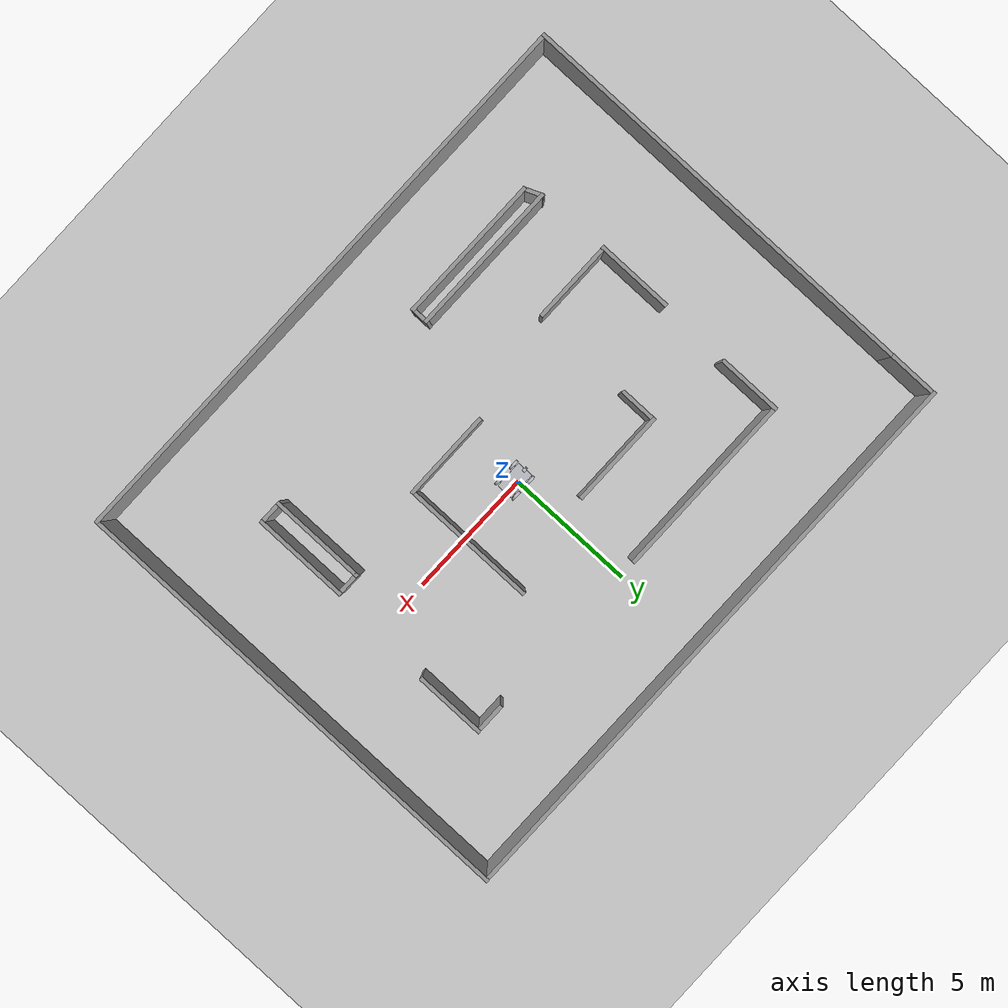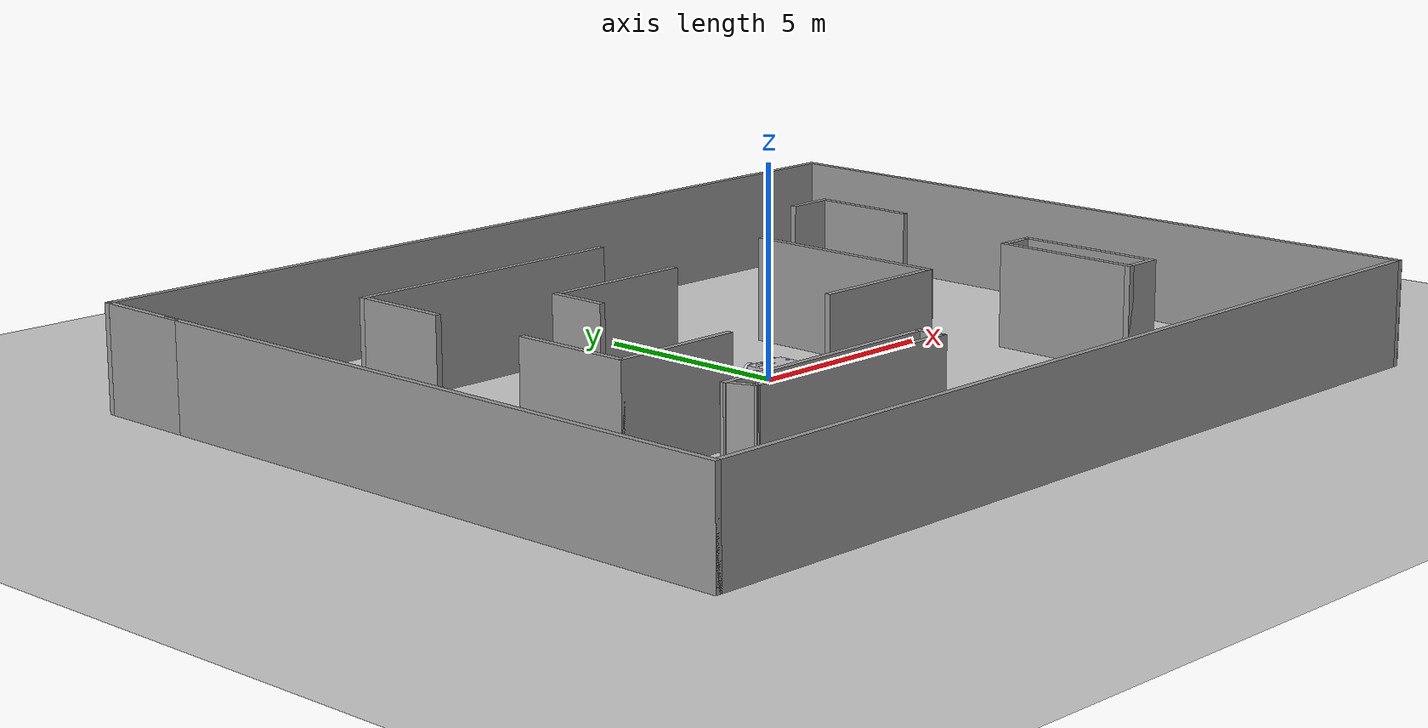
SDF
<sdf version="1.7">
 <world name="default">
  <light name="sun" type="directional">
   <pose>0 0 10 0 -0 0</pose>
   <diffuse>0.8 0.8 0.8 1</diffuse>
   <specular>0.2 0.2 0.2 1</specular>
   <attenuation>
    <range>1000</range>
    <constant>0.9</constant>
    <linear>0.01</linear>
    <quadratic>0.001</quadratic>
   </attenuation>
   <direction>-0.5 0.1 -0.9</direction>
   <spot><inner_angle>0</inner_angle><outer_angle>0</outer_angle><falloff>0</falloff></spot>
  </light>
  <model name="ground_plane">
   <static>1</static>
   <link name="link">
    <collision name="collision">
     <geometry><plane><normal>0 0 1</normal><size>100 100</size></plane></geometry>
     <surface><friction><ode><mu>100</mu><mu2>50</mu2></ode></friction></surface>
    </collision>
    <visual name="visual">
     <cast_shadows>0</cast_shadows>
     <geometry><plane><normal>0 0 1</normal><size>100 100</size></plane></geometry>
     <material>
      <script><uri>file://media/materials/scripts/gazebo.material</uri><name>Gazebo/Grey</name></script>
     </material>
    </visual>
   </link>
  </model>
  <gravity>0 0 -9.8</gravity>
  <magnetic_field>6e-06 2.3e-05 -4.2e-05</magnetic_field>
  <atmosphere type="adiabatic"/>
  <physics type="ode">
   <max_step_size>0.001</max_step_size>
   <real_time_factor>1</real_time_factor>
   <real_time_update_rate>1000</real_time_update_rate>
  </physics>
  <scene><ambient>0.4 0.4 0.4 1</ambient><background>0.7 0.7 0.7 1</background><shadows>1</shadows></scene>
  <audio><device>default</device></audio>
  <spherical_coordinates>
   <surface_model>EARTH_WGS84</surface_model>
   <latitude_deg>0</latitude_deg>
   <longitude_deg>0</longitude_deg>
   <elevation>0</elevation>
   <heading_deg>0</heading_deg>
  </spherical_coordinates>
  <model name="k12">
   <link name="base_link">
    <inertial>
     <pose>-0.003178 -0.079896 0.266018 0 -0 0</pose>
     <mass>1425.62</mass>
     <inertia>
      <ixx>55.3027</ixx>
      <ixy>-0.00157627</ixy>
      <ixz>0.76247</ixz>
      <iyy>153.658</iyy>
      <iyz>0.00981712</iyz>
      <izz>192.396</izz>
     </inertia>
    </inertial>
    <collision name="base_link_collision">
     <geometry>
      <mesh>
       <scale>0.001 0.001 0.001</scale>
       <uri>file:///home/vijay/roverr_ws/install/k12_description/share/k12_description/meshes/base_link.stl</uri>
      </mesh>
     </geometry>
     <surface><friction><ode><mu>0.2</mu><mu2>0.2</mu2></ode></friction></surface>
    </collision>
    <collision name="base_link_fixed_joint_lump__lidar_1_collision_1">
     <geometry>
      <mesh>
       <scale>0.001 0.001 0.001</scale>
       <uri>file:///home/vijay/roverr_ws/install/k12_description/share/k12_description/meshes/lidar_1.stl</uri>
      </mesh>
     </geometry>
     <surface><friction><ode><mu>0.2</mu><mu2>0.2</mu2></ode></friction></surface>
    </collision>
    <collision name="base_link_fixed_joint_lump__cam_1_collision_2">
     <geometry>
      <mesh>
       <scale>0.001 0.001 0.001</scale>
       <uri>file:///home/vijay/roverr_ws/install/k12_description/share/k12_description/meshes/cam_1.stl</uri>
      </mesh>
     </geometry>
     <surface><friction><ode><mu>0.2</mu><mu2>0.2</mu2></ode></friction></surface>
    </collision>
    <collision name="base_link_fixed_joint_lump__imu_1_collision_3">
     <geometry>
      <mesh>
       <scale>0.001 0.001 0.001</scale>
       <uri>file:///home/vijay/roverr_ws/install/k12_description/share/k12_description/meshes/imu_1.stl</uri>
      </mesh>
     </geometry>
     <surface><friction><ode><mu>0.2</mu><mu2>0.2</mu2></ode></friction></surface>
    </collision>
    <collision name="base_link_fixed_joint_lump__gps_1_collision_4">
     <geometry>
      <mesh>
       <scale>0.001 0.001 0.001</scale>
       <uri>file:///home/vijay/roverr_ws/install/k12_description/share/k12_description/meshes/gps_1.stl</uri>
      </mesh>
     </geometry>
     <surface><friction><ode><mu>0.2</mu><mu2>0.2</mu2></ode></friction></surface>
    </collision>
    <visual name="base_link_visual">
     <geometry>
      <mesh>
       <scale>0.001 0.001 0.001</scale>
       <uri>file:///home/vijay/roverr_ws/install/k12_description/share/k12_description/meshes/base_link.stl</uri>
      </mesh>
     </geometry>
     <material>
      <script><name>Gazebo/Silver</name><uri>file://media/materials/scripts/gazebo.material</uri></script>
     </material>
    </visual>
    <visual name="base_link_fixed_joint_lump__lidar_1_visual_1">
     <geometry>
      <mesh>
       <scale>0.001 0.001 0.001</scale>
       <uri>file:///home/vijay/roverr_ws/install/k12_description/share/k12_description/meshes/lidar_1.stl</uri>
      </mesh>
     </geometry>
     <material>
      <script><name>Gazebo/Silver</name><uri>file://media/materials/scripts/gazebo.material</uri></script>
     </material>
    </visual>
    <visual name="base_link_fixed_joint_lump__cam_1_visual_2">
     <geometry>
      <mesh>
       <scale>0.001 0.001 0.001</scale>
       <uri>file:///home/vijay/roverr_ws/install/k12_description/share/k12_description/meshes/cam_1.stl</uri>
      </mesh>
     </geometry>
     <material>
      <script><name>Gazebo/Silver</name><uri>file://media/materials/scripts/gazebo.material</uri></script>
     </material>
    </visual>
    <visual name="base_link_fixed_joint_lump__imu_1_visual_3">
     <geometry>
      <mesh>
       <scale>0.001 0.001 0.001</scale>
       <uri>file:///home/vijay/roverr_ws/install/k12_description/share/k12_description/meshes/imu_1.stl</uri>
      </mesh>
     </geometry>
     <material>
      <script><name>Gazebo/Silver</name><uri>file://media/materials/scripts/gazebo.material</uri></script>
     </material>
    </visual>
    <visual name="base_link_fixed_joint_lump__gps_1_visual_4">
     <geometry>
      <mesh>
       <scale>0.001 0.001 0.001</scale>
       <uri>file:///home/vijay/roverr_ws/install/k12_description/share/k12_description/meshes/gps_1.stl</uri>
      </mesh>
     </geometry>
     <material>
      <script><name>Gazebo/Silver</name><uri>file://media/materials/scripts/gazebo.material</uri></script>
     </material>
    </visual>
    <self_collide>1</self_collide>
    <self_collide>1</self_collide>
    <sensor name="laser" type="ray">
     <visualize>1</visualize>
     <update_rate>100</update_rate>
     <ray>
      <scan>
       <horizontal>
        <samples>720</samples>
        <min_angle>-3.14</min_angle>
        <max_angle>3.14</max_angle>
        <resolution>1</resolution>
       </horizontal>
       <vertical><samples>1</samples><min_angle>0</min_angle><max_angle>0</max_angle></vertical>
      </scan>
      <range><min>0.1</min><max>100</max></range>
     </ray>
     <plugin name="laser_controller" filename="libgazebo_ros_ray_sensor.so">
      <ros><argument>~/out:=scan</argument></ros>
      <output_type>sensor_msgs/LaserScan</output_type>
      <frame_name>lidar_1</frame_name>
     </plugin>
     <pose>-0.5 -0.08 0.445 0 -0 0</pose>
    </sensor>
    <self_collide>1</self_collide>
    <self_collide>1</self_collide>
    <sensor name="imu" type="imu">
     <always_on>1</always_on>
     <update_rate>5</update_rate>
     <plugin name="imu_plugin" filename="libgazebo_ros_imu_sensor.so">
      <ros><remapping>~/out:=imu</remapping></ros>
     </plugin>
     <pose>0 -0.08 0.4 0 -0 0</pose>
    </sensor>
    <self_collide>1</self_collide>
   </link>
   <joint name="Revolute 17" type="revolute">
    <pose relative_to="base_link">-0.379738 -0.435 0.2 0 -0 0</pose>
    <parent>base_link</parent>
    <child>left_front_1</child>
    <axis>
     <xyz>0 1 0</xyz>
     <limit><lower>-1e+16</lower><upper>1e+16</upper></limit>
     <dynamics><spring_reference>0</spring_reference><spring_stiffness>0</spring_stiffness></dynamics>
    </axis>
   </joint>
   <link name="left_front_1">
    <pose relative_to="Revolute 17">0 0 0 0 -0 0</pose>
    <inertial>
     <pose>-0 -0.05 0 0 -0 0</pose>
     <mass>98.646</mass>
     <inertia><ixx>1.06866</ixx><ixy>0</ixy><ixz>0</ixz><iyy>1.97292</iyy><iyz>0</iyz><izz>1.06866</izz></inertia>
    </inertial>
    <collision name="left_front_1_collision">
     <pose>0.379738 0.435 -0.2 0 -0 0</pose>
     <geometry>
      <mesh>
       <scale>0.001 0.001 0.001</scale>
       <uri>file:///home/vijay/roverr_ws/install/k12_description/share/k12_description/meshes/left_front_1.stl</uri>
      </mesh>
     </geometry>
     <surface><friction><ode><mu>0.2</mu><mu2>0.2</mu2></ode></friction></surface>
    </collision>
    <visual name="left_front_1_visual">
     <pose>0.379738 0.435 -0.2 0 -0 0</pose>
     <geometry>
      <mesh>
       <scale>0.001 0.001 0.001</scale>
       <uri>file:///home/vijay/roverr_ws/install/k12_description/share/k12_description/meshes/left_front_1.stl</uri>
      </mesh>
     </geometry>
     <material>
      <script><name>Gazebo/Silver</name><uri>file://media/materials/scripts/gazebo.material</uri></script>
     </material>
    </visual>
    <self_collide>1</self_collide>
   </link>
   <joint name="Revolute 18" type="revolute">
    <pose relative_to="base_link">0.373496 -0.435 0.2 0 -0 0</pose>
    <parent>base_link</parent>
    <child>left_back_1</child>
    <axis>
     <xyz>0 1 0</xyz>
     <limit><lower>-1e+16</lower><upper>1e+16</upper></limit>
     <dynamics><spring_reference>0</spring_reference><spring_stiffness>0</spring_stiffness></dynamics>
    </axis>
   </joint>
   <link name="left_back_1">
    <pose relative_to="Revolute 18">0 0 0 0 -0 0</pose>
    <inertial>
     <pose>0 -0.05 0 0 -0 0</pose>
     <mass>98.646</mass>
     <inertia><ixx>1.06866</ixx><ixy>0</ixy><ixz>0</ixz><iyy>1.97292</iyy><iyz>0</iyz><izz>1.06866</izz></inertia>
    </inertial>
    <collision name="left_back_1_collision">
     <pose>-0.373496 0.435 -0.2 0 -0 0</pose>
     <geometry>
      <mesh>
       <scale>0.001 0.001 0.001</scale>
       <uri>file:///home/vijay/roverr_ws/install/k12_description/share/k12_description/meshes/left_back_1.stl</uri>
      </mesh>
     </geometry>
     <surface><friction><ode><mu>0.2</mu><mu2>0.2</mu2></ode></friction></surface>
    </collision>
    <visual name="left_back_1_visual">
     <pose>-0.373496 0.435 -0.2 0 -0 0</pose>
     <geometry>
      <mesh>
       <scale>0.001 0.001 0.001</scale>
       <uri>file:///home/vijay/roverr_ws/install/k12_description/share/k12_description/meshes/left_back_1.stl</uri>
      </mesh>
     </geometry>
     <material>
      <script><name>Gazebo/Silver</name><uri>file://media/materials/scripts/gazebo.material</uri></script>
     </material>
    </visual>
    <self_collide>1</self_collide>
   </link>
   <joint name="Revolute 19" type="revolute">
    <pose relative_to="base_link">0.373538 0.275 0.2 0 -0 0</pose>
    <parent>base_link</parent>
    <child>right_back_1</child>
    <axis>
     <xyz>0 1 0</xyz>
     <limit><lower>-1e+16</lower><upper>1e+16</upper></limit>
     <dynamics><spring_reference>0</spring_reference><spring_stiffness>0</spring_stiffness></dynamics>
    </axis>
   </joint>
   <link name="right_back_1">
    <pose relative_to="Revolute 19">0 0 0 0 -0 0</pose>
    <inertial>
     <pose>0 0.05 -0 0 -0 0</pose>
     <mass>98.646</mass>
     <inertia><ixx>1.06866</ixx><ixy>0</ixy><ixz>0</ixz><iyy>1.97292</iyy><iyz>0</iyz><izz>1.06866</izz></inertia>
    </inertial>
    <collision name="right_back_1_collision">
     <pose>-0.373538 -0.275 -0.2 0 -0 0</pose>
     <geometry>
      <mesh>
       <scale>0.001 0.001 0.001</scale>
       <uri>file:///home/vijay/roverr_ws/install/k12_description/share/k12_description/meshes/right_back_1.stl</uri>
      </mesh>
     </geometry>
     <surface><friction><ode><mu>0.2</mu><mu2>0.2</mu2></ode></friction></surface>
    </collision>
    <visual name="right_back_1_visual">
     <pose>-0.373538 -0.275 -0.2 0 -0 0</pose>
     <geometry>
      <mesh>
       <scale>0.001 0.001 0.001</scale>
       <uri>file:///home/vijay/roverr_ws/install/k12_description/share/k12_description/meshes/right_back_1.stl</uri>
      </mesh>
     </geometry>
     <material>
      <script><name>Gazebo/Silver</name><uri>file://media/materials/scripts/gazebo.material</uri></script>
     </material>
    </visual>
    <self_collide>1</self_collide>
   </link>
   <joint name="Revolute 20" type="revolute">
    <pose relative_to="base_link">-0.372187 0.275 0.2 0 -0 0</pose>
    <parent>base_link</parent>
    <child>right_front_1</child>
    <axis>
     <xyz>0 1 0</xyz>
     <limit><lower>-1e+16</lower><upper>1e+16</upper></limit>
     <dynamics><spring_reference>0</spring_reference><spring_stiffness>0</spring_stiffness></dynamics>
    </axis>
   </joint>
   <link name="right_front_1">
    <pose relative_to="Revolute 20">0 0 0 0 -0 0</pose>
    <inertial>
     <pose>-0 0.05 -0 0 -0 0</pose>
     <mass>98.646</mass>
     <inertia><ixx>1.06866</ixx><ixy>0</ixy><ixz>0</ixz><iyy>1.97292</iyy><iyz>0</iyz><izz>1.06866</izz></inertia>
    </inertial>
    <collision name="right_front_1_collision">
     <pose>0.372187 -0.275 -0.2 0 -0 0</pose>
     <geometry>
      <mesh>
       <scale>0.001 0.001 0.001</scale>
       <uri>file:///home/vijay/roverr_ws/install/k12_description/share/k12_description/meshes/right_front_1.stl</uri>
      </mesh>
     </geometry>
     <surface><friction><ode><mu>0.2</mu><mu2>0.2</mu2></ode></friction></surface>
    </collision>
    <visual name="right_front_1_visual">
     <pose>0.372187 -0.275 -0.2 0 -0 0</pose>
     <geometry>
      <mesh>
       <scale>0.001 0.001 0.001</scale>
       <uri>file:///home/vijay/roverr_ws/install/k12_description/share/k12_description/meshes/right_front_1.stl</uri>
      </mesh>
     </geometry>
     <material>
      <script><name>Gazebo/Silver</name><uri>file://media/materials/scripts/gazebo.material</uri></script>
     </material>
    </visual>
    <self_collide>1</self_collide>
   </link>
   <plugin name="control" filename="libgazebo_ros_control.so"/>
   <plugin name="diff_drive_back" filename="libgazebo_ros_diff_drive.so">
    <left_joint>Revolute 20</left_joint>
    <right_joint>Revolute 17</right_joint>
    <wheel_separation>0.9</wheel_separation>
    <wheel_diameter>0.4</wheel_diameter>
    <max_wheel_torque>5000</max_wheel_torque>
    <max_wheel_acceleration>1.0</max_wheel_acceleration>
    <odometry_frame>odom</odometry_frame>
    <robot_base_frame>base_link</robot_base_frame>
    <ros><remapping>odom:=odom</remapping></ros>
    <publish_odom>1</publish_odom>
    <publish_odom_tf>1</publish_odom_tf>
    <publish_wheel_tf>1</publish_wheel_tf>
   </plugin>
   <static>0</static>
   <plugin name="diff_drive_front" filename="libgazebo_ros_diff_drive.so">
    <left_joint>Revolute 19</left_joint>
    <right_joint>Revolute 18</right_joint>
    <wheel_separation>0.9</wheel_separation>
    <wheel_diameter>0.4</wheel_diameter>
    <max_wheel_torque>5000</max_wheel_torque>
    <max_wheel_acceleration>1.0</max_wheel_acceleration>
    <odometry_frame>odom</odometry_frame>
    <robot_base_frame>base_link</robot_base_frame>
    <ros><remapping>odom:=odom</remapping></ros>
    <publish_odom>1</publish_odom>
    <publish_odom_tf>1</publish_odom_tf>
    <publish_wheel_tf>1</publish_wheel_tf>
   </plugin>
   <pose>0.036173 -0.035332 -6.1e-05 -2.6e-05 2.7e-05 -0.001709</pose>
  </model>
  <model name="my_model">
   <pose>-0.570493 -0.646556 0 0 -0 0</pose>
   <link name="Wall_1">
    <collision name="Wall_1_Collision">
     <geometry><box><size>16.25 0.15 2.5</size></box></geometry>
     <pose>0 0 1.25 0 -0 0</pose>
    </collision>
    <visual name="Wall_1_Visual">
     <pose>0 0 1.25 0 -0 0</pose>
     <geometry><box><size>16.25 0.15 2.5</size></box></geometry>
     <material>
      <script><uri>file://media/materials/scripts/gazebo.material</uri><name>Gazebo/Grey</name></script>
      <ambient>1 1 1 1</ambient>
     </material>
     <meta><layer>0</layer></meta>
    </visual>
    <pose>-11.3 -1 0 0 -0 -1.5708</pose>
   </link>
   <link name="Wall_11">
    <collision name="Wall_11_Collision">
     <geometry><box><size>1.5 0.15 2.5</size></box></geometry>
     <pose>0 0 1.25 0 -0 0</pose>
    </collision>
    <visual name="Wall_11_Visual">
     <pose>0 0 1.25 0 -0 0</pose>
     <geometry><box><size>1.5 0.15 2.5</size></box></geometry>
     <material>
      <script><uri>file://media/materials/scripts/gazebo.material</uri><name>Gazebo/Grey</name></script>
      <ambient>1 1 1 1</ambient>
     </material>
     <meta><layer>0</layer></meta>
    </visual>
    <pose>-4.15871 1.9205 0 0 -0 1.5708</pose>
   </link>
   <link name="Wall_12">
    <collision name="Wall_12_Collision">
     <geometry><box><size>3.75 0.15 2.5</size></box></geometry>
     <pose>0 0 1.25 0 -0 0</pose>
    </collision>
    <visual name="Wall_12_Visual">
     <pose>0 0 1.25 0 -0 0</pose>
     <geometry><box><size>3.75 0.15 2.5</size></box></geometry>
     <material>
      <script><uri>file://media/materials/scripts/gazebo.material</uri><name>Gazebo/Grey</name></script>
      <ambient>1 1 1 1</ambient>
     </material>
     <meta><layer>0</layer></meta>
    </visual>
    <pose>-2.35871 2.5955 0 0 -0 0</pose>
   </link>
   <link name="Wall_14">
    <collision name="Wall_14_Collision">
     <geometry><box><size>3 0.15 2.5</size></box></geometry>
     <pose>0 0 1.25 0 -0 0</pose>
    </collision>
    <visual name="Wall_14_Visual">
     <pose>0 0 1.25 0 -0 0</pose>
     <geometry><box><size>3 0.15 2.5</size></box></geometry>
     <material>
      <script><uri>file://media/materials/scripts/gazebo.material</uri><name>Gazebo/Grey</name></script>
      <ambient>1 1 1 1</ambient>
     </material>
     <meta><layer>0</layer></meta>
    </visual>
    <pose>-7.3248 -1.19968 0 0 -0 -1.5708</pose>
   </link>
   <link name="Wall_15">
    <collision name="Wall_15_Collision">
     <geometry><box><size>3.25 0.15 2.5</size></box></geometry>
     <pose>0 0 1.25 0 -0 0</pose>
    </collision>
    <visual name="Wall_15_Visual">
     <pose>0 0 1.25 0 -0 0</pose>
     <geometry><box><size>3.25 0.15 2.5</size></box></geometry>
     <material>
      <script><uri>file://media/materials/scripts/gazebo.material</uri><name>Gazebo/Grey</name></script>
      <ambient>1 1 1 1</ambient>
     </material>
     <meta><layer>0</layer></meta>
    </visual>
    <pose>-5.7748 -2.62468 0 0 -0 0</pose>
   </link>
   <link name="Wall_17">
    <collision name="Wall_17_Collision">
     <geometry><box><size>6 0.15 2.5</size></box></geometry>
     <pose>0 0 1.25 0 -0 0</pose>
    </collision>
    <visual name="Wall_17_Visual">
     <pose>0 0 1.25 0 -0 0</pose>
     <geometry><box><size>6 0.15 2.5</size></box></geometry>
     <material>
      <script><uri>file://media/materials/scripts/gazebo.material</uri><name>Gazebo/Grey</name></script>
      <ambient>1 1 1 1</ambient>
     </material>
     <meta><layer>0</layer></meta>
    </visual>
    <pose>-4.29426 -5.40328 0 0 -0 0</pose>
   </link>
   <link name="Wall_18">
    <collision name="Wall_18_Collision">
     <geometry><box><size>0.75 0.15 2.5</size></box></geometry>
     <pose>0 0 1.25 0 -0 0</pose>
    </collision>
    <visual name="Wall_18_Visual">
     <pose>0 0 1.25 0 -0 0</pose>
     <geometry><box><size>0.75 0.15 2.5</size></box></geometry>
     <material>
      <script><uri>file://media/materials/scripts/gazebo.material</uri><name>Gazebo/Grey</name></script>
      <ambient>1 1 1 1</ambient>
     </material>
     <meta><layer>0</layer></meta>
    </visual>
    <pose>-1.36926 -5.70328 0 0 -0 -1.5708</pose>
   </link>
   <link name="Wall_19">
    <collision name="Wall_19_Collision">
     <geometry><box><size>5.75 0.15 2.5</size></box></geometry>
     <pose>0 0 1.25 0 -0 0</pose>
    </collision>
    <visual name="Wall_19_Visual">
     <pose>0 0 1.25 0 -0 0</pose>
     <geometry><box><size>5.75 0.15 2.5</size></box></geometry>
     <material>
      <script><uri>file://media/materials/scripts/gazebo.material</uri><name>Gazebo/Grey</name></script>
      <ambient>1 1 1 1</ambient>
     </material>
     <meta><layer>0</layer></meta>
    </visual>
    <pose>-4.16926 -6.00328 0 0 -0 3.14159</pose>
   </link>
   <link name="Wall_2">
    <collision name="Wall_2_Collision">
     <geometry><box><size>22.75 0.15 2.5</size></box></geometry>
     <pose>0 0 1.25 0 -0 0</pose>
    </collision>
    <visual name="Wall_2_Visual">
     <pose>0 0 1.25 0 -0 0</pose>
     <geometry><box><size>22.75 0.15 2.5</size></box></geometry>
     <material>
      <script><uri>file://media/materials/scripts/gazebo.material</uri><name>Gazebo/Grey</name></script>
      <ambient>1 1 1 1</ambient>
     </material>
     <meta><layer>0</layer></meta>
    </visual>
    <pose>0 -9.05 0 0 -0 0</pose>
   </link>
   <link name="Wall_20">
    <collision name="Wall_20_Collision">
     <geometry><box><size>0.8 0.15 2.5</size></box></geometry>
     <pose>0 0 1.25 0 -0 0</pose>
    </collision>
    <visual name="Wall_20_Visual">
     <pose>0 0 1.25 0 -0 0</pose>
     <geometry><box><size>0.8 0.15 2.5</size></box></geometry>
     <material>
      <script><uri>file://media/materials/scripts/gazebo.material</uri><name>Gazebo/Grey</name></script>
      <ambient>1 1 1 1</ambient>
     </material>
     <meta><layer>0</layer></meta>
    </visual>
    <pose>-7.09426 -5.70328 0 0 -0 1.96559</pose>
   </link>
   <link name="Wall_22">
    <collision name="Wall_22_Collision">
     <geometry><box><size>3.5 0.15 2.5</size></box></geometry>
     <pose>0 0 1.25 0 -0 0</pose>
    </collision>
    <visual name="Wall_22_Visual">
     <pose>0 0 1.25 0 -0 0</pose>
     <geometry><box><size>3.5 0.15 2.5</size></box></geometry>
     <material>
      <script><uri>file://media/materials/scripts/gazebo.material</uri><name>Gazebo/Grey</name></script>
      <ambient>1 1 1 1</ambient>
     </material>
     <meta><layer>0</layer></meta>
    </visual>
    <pose>1.56185 -1.77987 0 0 -0 0</pose>
   </link>
   <link name="Wall_23">
    <collision name="Wall_23_Collision">
     <geometry><box><size>5.25 0.15 2.5</size></box></geometry>
     <pose>0 0 1.25 0 -0 0</pose>
    </collision>
    <visual name="Wall_23_Visual">
     <pose>0 0 1.25 0 -0 0</pose>
     <geometry><box><size>5.25 0.15 2.5</size></box></geometry>
     <material>
      <script><uri>file://media/materials/scripts/gazebo.material</uri><name>Gazebo/Grey</name></script>
      <ambient>1 1 1 1</ambient>
     </material>
     <meta><layer>0</layer></meta>
    </visual>
    <pose>3.23685 0.77013 0 0 -0 1.5708</pose>
   </link>
   <link name="Wall_25">
    <collision name="Wall_25_Collision">
     <geometry><box><size>1.25 0.15 2.5</size></box></geometry>
     <pose>0 0 1.25 0 -0 0</pose>
    </collision>
    <visual name="Wall_25_Visual">
     <pose>0 0 1.25 0 -0 0</pose>
     <geometry><box><size>1.25 0.15 2.5</size></box></geometry>
     <material>
      <script><uri>file://media/materials/scripts/gazebo.material</uri><name>Gazebo/Grey</name></script>
      <ambient>1 1 1 1</ambient>
     </material>
     <meta><layer>0</layer></meta>
    </visual>
    <pose>7.19117 5.3966 0 0 -0 0</pose>
   </link>
   <link name="Wall_26">
    <collision name="Wall_26_Collision">
     <geometry><box><size>2.75 0.15 2.5</size></box></geometry>
     <pose>0 0 1.25 0 -0 0</pose>
    </collision>
    <visual name="Wall_26_Visual">
     <pose>0 0 1.25 0 -0 0</pose>
     <geometry><box><size>2.75 0.15 2.5</size></box></geometry>
     <material>
      <script><uri>file://media/materials/scripts/gazebo.material</uri><name>Gazebo/Grey</name></script>
      <ambient>1 1 1 1</ambient>
     </material>
     <meta><layer>0</layer></meta>
    </visual>
    <pose>7.74117 4.0966 0 0 -0 -1.5708</pose>
   </link>
   <link name="Wall_28">
    <collision name="Wall_28_Collision">
     <geometry><box><size>1 0.15 2.5</size></box></geometry>
     <pose>0 0 1.25 0 -0 0</pose>
    </collision>
    <visual name="Wall_28_Visual">
     <pose>0 0 1.25 0 -0 0</pose>
     <geometry><box><size>1 0.15 2.5</size></box></geometry>
     <material>
      <script><uri>file://media/materials/scripts/gazebo.material</uri><name>Gazebo/Grey</name></script>
      <ambient>1 1 1 1</ambient>
     </material>
     <meta><layer>0</layer></meta>
    </visual>
    <pose>7.06617 -1.28737 0 0 -0 0</pose>
   </link>
   <link name="Wall_29">
    <collision name="Wall_29_Collision">
     <geometry><box><size>3.75 0.15 2.5</size></box></geometry>
     <pose>0 0 1.25 0 -0 0</pose>
    </collision>
    <visual name="Wall_29_Visual">
     <pose>0 0 1.25 0 -0 0</pose>
     <geometry><box><size>3.75 0.15 2.5</size></box></geometry>
     <material>
      <script><uri>file://media/materials/scripts/gazebo.material</uri><name>Gazebo/Grey</name></script>
      <ambient>1 1 1 1</ambient>
     </material>
     <meta><layer>0</layer></meta>
    </visual>
    <pose>7.49117 -3.08737 0 0 -0 -1.5708</pose>
   </link>
   <link name="Wall_3">
    <collision name="Wall_3_Collision">
     <geometry><box><size>18.25 0.15 2.5</size></box></geometry>
     <pose>0 0 1.25 0 -0 0</pose>
    </collision>
    <visual name="Wall_3_Visual">
     <pose>0 0 1.25 0 -0 0</pose>
     <geometry><box><size>18.25 0.15 2.5</size></box></geometry>
     <material>
      <script><uri>file://media/materials/scripts/gazebo.material</uri><name>Gazebo/Grey</name></script>
      <ambient>1 1 1 1</ambient>
     </material>
     <meta><layer>0</layer></meta>
    </visual>
    <pose>11.3 -0 0 0 -0 1.5708</pose>
   </link>
   <link name="Wall_30">
    <collision name="Wall_30_Collision">
     <geometry><box><size>1 0.15 2.5</size></box></geometry>
     <pose>0 0 1.25 0 -0 0</pose>
    </collision>
    <visual name="Wall_30_Visual">
     <pose>0 0 1.25 0 -0 0</pose>
     <geometry><box><size>1 0.15 2.5</size></box></geometry>
     <material>
      <script><uri>file://media/materials/scripts/gazebo.material</uri><name>Gazebo/Grey</name></script>
      <ambient>1 1 1 1</ambient>
     </material>
     <meta><layer>0</layer></meta>
    </visual>
    <pose>7.06617 -4.88737 0 0 -0 3.14159</pose>
   </link>
   <link name="Wall_31">
    <collision name="Wall_31_Collision">
     <geometry><box><size>3.75 0.15 2.5</size></box></geometry>
     <pose>0 0 1.25 0 -0 0</pose>
    </collision>
    <visual name="Wall_31_Visual">
     <pose>0 0 1.25 0 -0 0</pose>
     <geometry><box><size>3.75 0.15 2.5</size></box></geometry>
     <material>
      <script><uri>file://media/materials/scripts/gazebo.material</uri><name>Gazebo/Grey</name></script>
      <ambient>1 1 1 1</ambient>
     </material>
     <meta><layer>0</layer></meta>
    </visual>
    <pose>6.64117 -3.08737 0 0 -0 1.5708</pose>
   </link>
   <link name="Wall_4">
    <collision name="Wall_4_Collision">
     <geometry><box><size>22.75 0.15 2.5</size></box></geometry>
     <pose>0 0 1.25 0 -0 0</pose>
    </collision>
    <visual name="Wall_4_Visual">
     <pose>0 0 1.25 0 -0 0</pose>
     <geometry><box><size>22.75 0.15 2.5</size></box></geometry>
     <material>
      <script><uri>file://media/materials/scripts/gazebo.material</uri><name>Gazebo/Grey</name></script>
      <ambient>1 1 1 1</ambient>
     </material>
     <meta><layer>0</layer></meta>
    </visual>
    <pose>0 9.05 0 0 -0 3.14159</pose>
   </link>
   <link name="Wall_5">
    <collision name="Wall_5_Collision">
     <geometry><box><size>2.5 0.15 2.5</size></box></geometry>
     <pose>0 0 1.25 0 -0 0</pose>
    </collision>
    <visual name="Wall_5_Visual">
     <pose>0 0 1.25 0 -0 0</pose>
     <geometry><box><size>2.5 0.15 2.5</size></box></geometry>
     <material>
      <script><uri>file://media/materials/scripts/gazebo.material</uri><name>Gazebo/Grey</name></script>
      <ambient>1 1 1 1</ambient>
     </material>
     <meta><layer>0</layer></meta>
    </visual>
    <pose>-11.3 7.875 0 0 -0 -1.5708</pose>
   </link>
   <link name="Wall_7">
    <collision name="Wall_7_Collision">
     <geometry><box><size>2.5 0.15 2.5</size></box></geometry>
     <pose>0 0 1.25 0 -0 0</pose>
    </collision>
    <visual name="Wall_7_Visual">
     <pose>0 0 1.25 0 -0 0</pose>
     <geometry><box><size>2.5 0.15 2.5</size></box></geometry>
     <material>
      <script><uri>file://media/materials/scripts/gazebo.material</uri><name>Gazebo/Grey</name></script>
      <ambient>1 1 1 1</ambient>
     </material>
     <meta><layer>0</layer></meta>
    </visual>
    <pose>-7.25444 4.2216 0 0 -0 -1.5708</pose>
   </link>
   <link name="Wall_9">
    <collision name="Wall_9_Collision">
     <geometry><box><size>7.25 0.15 2.5</size></box></geometry>
     <pose>0 0 1.25 0 -0 0</pose>
    </collision>
    <visual name="Wall_9_Visual">
     <pose>0 0 1.25 0 -0 0</pose>
     <geometry><box><size>7.25 0.15 2.5</size></box></geometry>
     <material>
      <script><uri>file://media/materials/scripts/gazebo.material</uri><name>Gazebo/Grey</name></script>
      <ambient>1 1 1 1</ambient>
     </material>
     <meta><layer>0</layer></meta>
    </visual>
    <pose>-3.70444 5.3966 0 0 -0 0</pose>
   </link>
   <static>1</static>
  </model>
 </world>
</sdf>
